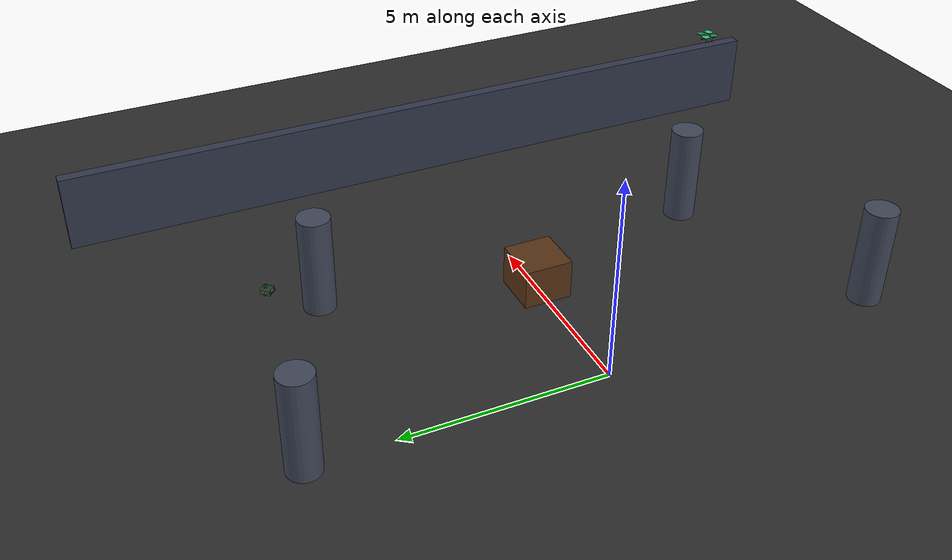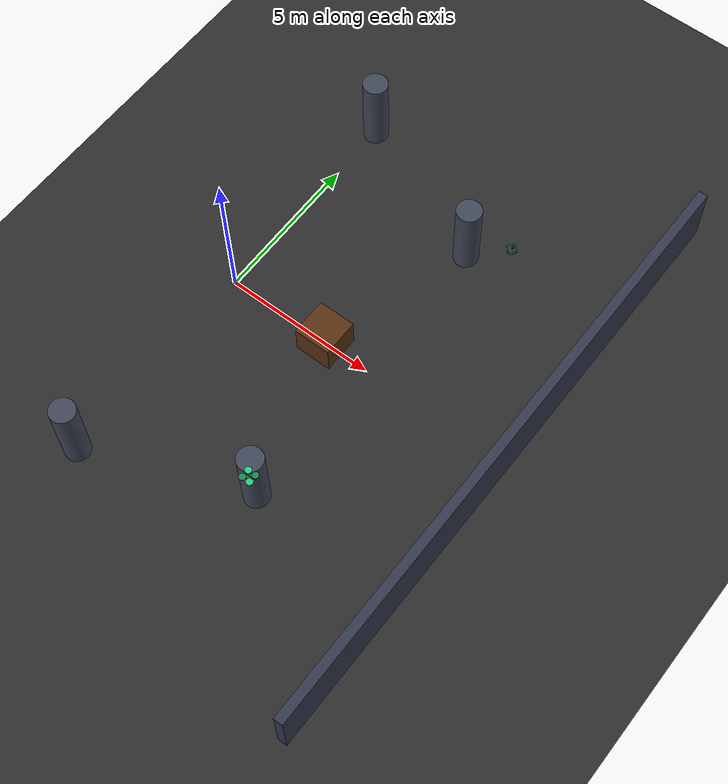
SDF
<sdf version="1.8">
 <world name="c2_arena">
  <model name="ground_plane">
   <static>true</static>
   <link name="link">
    <collision name="collision">
     <geometry><plane><normal>0 0 1</normal><size>100 100</size></plane></geometry>
     <surface><friction><ode><mu>0.8</mu><mu2>0.8</mu2></ode></friction></surface>
    </collision>
    <visual name="visual">
     <geometry><plane><normal>0 0 1</normal><size>100 100</size></plane></geometry>
     <material><ambient>0.18 0.18 0.18 1</ambient><diffuse>0.18 0.18 0.18 1</diffuse></material>
    </visual>
   </link>
  </model>
  <model name="wall_east">
   <static>true</static>
   <pose>10 0 1.0 0 0 0</pose>
   <link name="link">
    <collision name="c"><geometry><box><size>0.3 20.0 2.0</size></box></geometry></collision>
    <visual name="v">
     <geometry><box><size>0.3 20.0 2.0</size></box></geometry>
     <material><ambient>0.20 0.22 0.30 1</ambient><diffuse>0.20 0.22 0.30 1</diffuse></material>
    </visual>
   </link>
  </model>
  <model name="pillar_pp">
   <static>true</static>
   <pose>5 5 1.25 0 0 0</pose>
   <link name="link">
    <collision name="c">
     <geometry><cylinder><radius>0.4</radius><length>2.5</length></cylinder></geometry>
    </collision>
    <visual name="v">
     <geometry><cylinder><radius>0.4</radius><length>2.5</length></cylinder></geometry>
     <material><ambient>0.25 0.28 0.35 1</ambient><diffuse>0.25 0.28 0.35 1</diffuse></material>
    </visual>
   </link>
  </model>
  <model name="pillar_pn">
   <static>true</static>
   <pose>5 -5 1.25 0 0 0</pose>
   <link name="link">
    <collision name="c">
     <geometry><cylinder><radius>0.4</radius><length>2.5</length></cylinder></geometry>
    </collision>
    <visual name="v">
     <geometry><cylinder><radius>0.4</radius><length>2.5</length></cylinder></geometry>
     <material><ambient>0.25 0.28 0.35 1</ambient><diffuse>0.25 0.28 0.35 1</diffuse></material>
    </visual>
   </link>
  </model>
  <model name="pillar_0p">
   <static>true</static>
   <pose>0 7 1.25 0 0 0</pose>
   <link name="link">
    <collision name="c">
     <geometry><cylinder><radius>0.4</radius><length>2.5</length></cylinder></geometry>
    </collision>
    <visual name="v">
     <geometry><cylinder><radius>0.4</radius><length>2.5</length></cylinder></geometry>
     <material><ambient>0.25 0.28 0.35 1</ambient><diffuse>0.25 0.28 0.35 1</diffuse></material>
    </visual>
   </link>
  </model>
  <model name="pillar_0n">
   <static>true</static>
   <pose>0 -7 1.25 0 0 0</pose>
   <link name="link">
    <collision name="c">
     <geometry><cylinder><radius>0.4</radius><length>2.5</length></cylinder></geometry>
    </collision>
    <visual name="v">
     <geometry><cylinder><radius>0.4</radius><length>2.5</length></cylinder></geometry>
     <material><ambient>0.25 0.28 0.35 1</ambient><diffuse>0.25 0.28 0.35 1</diffuse></material>
    </visual>
   </link>
  </model>
  <model name="obs_east">
   <static>true</static>
   <pose>3.5 0 0.5 0 0 0</pose>
   <link name="link">
    <collision name="c"><geometry><box><size>1.2 1.2 1.0</size></box></geometry></collision>
    <visual name="v">
     <geometry><box><size>1.2 1.2 1.0</size></box></geometry>
     <material><ambient>0.35 0.20 0.08 1</ambient><diffuse>0.35 0.20 0.08 1</diffuse></material>
    </visual>
   </link>
  </model>
  <model name="robot2">
   <pose>6 6 0.10 0 0 -2.356194</pose>
   <link name="base_link">
    <inertial>
     <mass>5.0</mass>
     <inertia><ixx>0.10</ixx><ixy>0</ixy><ixz>0</ixz><iyy>0.10</iyy><iyz>0</iyz><izz>0.14</izz></inertia>
    </inertial>
    <collision name="collision">
     <geometry><box><size>0.29 0.265 0.12</size></box></geometry>
     <surface><friction><ode><mu>0.5</mu><mu2>0.5</mu2></ode></friction></surface>
    </collision>
    <visual name="plate_bottom">
     <pose>0 0 -0.057 0 0 0</pose>
     <geometry><box><size>0.290 0.265 0.018</size></box></geometry>
     <material>
      <ambient>0.10 0.20 0.13 1</ambient>
      <diffuse>0.10 0.20 0.13 1</diffuse>
      <specular>0.22 0.40 0.28 1</specular>
     </material>
    </visual>
    <visual name="plate_mid">
     <pose>0 0 -0.005 0 0 0</pose>
     <geometry><box><size>0.290 0.265 0.018</size></box></geometry>
     <material>
      <ambient>0.11 0.22 0.14 1</ambient>
      <diffuse>0.11 0.22 0.14 1</diffuse>
      <specular>0.24 0.44 0.30 1</specular>
     </material>
    </visual>
    <visual name="plate_top">
     <pose>0 0 0.052 0 0 0</pose>
     <geometry><box><size>0.270 0.245 0.014</size></box></geometry>
     <material>
      <ambient>0.12 0.24 0.15 1</ambient>
      <diffuse>0.12 0.24 0.15 1</diffuse>
      <specular>0.25 0.46 0.32 1</specular>
     </material>
    </visual>
    <visual name="col_fl">
     <pose>0.113  0.093 -0.028 0 0 0</pose>
     <geometry><cylinder><radius>0.007</radius><length>0.105</length></cylinder></geometry>
     <material><ambient>0.24 0.38 0.28 1</ambient><diffuse>0.24 0.38 0.28 1</diffuse></material>
    </visual>
    <visual name="col_fr">
     <pose>0.113 -0.093 -0.028 0 0 0</pose>
     <geometry><cylinder><radius>0.007</radius><length>0.105</length></cylinder></geometry>
     <material><ambient>0.24 0.38 0.28 1</ambient><diffuse>0.24 0.38 0.28 1</diffuse></material>
    </visual>
    <visual name="col_bl">
     <pose>-0.113  0.093 -0.028 0 0 0</pose>
     <geometry><cylinder><radius>0.007</radius><length>0.105</length></cylinder></geometry>
     <material><ambient>0.24 0.38 0.28 1</ambient><diffuse>0.24 0.38 0.28 1</diffuse></material>
    </visual>
    <visual name="col_br">
     <pose>-0.113 -0.093 -0.028 0 0 0</pose>
     <geometry><cylinder><radius>0.007</radius><length>0.105</length></cylinder></geometry>
     <material><ambient>0.24 0.38 0.28 1</ambient><diffuse>0.24 0.38 0.28 1</diffuse></material>
    </visual>
    <visual name="lidar_base">
     <pose>-0.040 0 0.068 0 0 0</pose>
     <geometry><cylinder><radius>0.042</radius><length>0.010</length></cylinder></geometry>
     <material><ambient>0.16 0.20 0.18 1</ambient><diffuse>0.16 0.20 0.18 1</diffuse></material>
    </visual>
    <visual name="lidar_body">
     <pose>-0.040 0 0.093 0 0 0</pose>
     <geometry><cylinder><radius>0.038</radius><length>0.040</length></cylinder></geometry>
     <material>
      <ambient>0.08 0.48 0.16 1</ambient>
      <diffuse>0.08 0.48 0.16 1</diffuse>
      <specular>0.50 0.85 0.55 1</specular>
     </material>
    </visual>
    <visual name="lidar_dome">
     <pose>-0.040 0 0.116 0 0 0</pose>
     <geometry><sphere><radius>0.026</radius></sphere></geometry>
     <material>
      <ambient>0.06 0.38 0.12 1</ambient>
      <diffuse>0.06 0.38 0.12 1</diffuse>
      <specular>0.75 1.00 0.80 1</specular>
     </material>
    </visual>
    <visual name="cam_housing">
     <pose>0.146 0 0.012 0 0 0</pose>
     <geometry><box><size>0.030 0.090 0.046</size></box></geometry>
     <material>
      <ambient>0.05 0.06 0.05 1</ambient>
      <diffuse>0.05 0.06 0.05 1</diffuse>
      <specular>0.50 0.50 0.50 1</specular>
     </material>
    </visual>
    <visual name="cam_lens">
     <pose>0.162 0 0.012 0 1.5707963 0</pose>
     <geometry><cylinder><radius>0.014</radius><length>0.008</length></cylinder></geometry>
     <material>
      <ambient>0.02 0.02 0.02 1</ambient>
      <diffuse>0.02 0.02 0.02 1</diffuse>
      <specular>0.95 0.95 0.95 1</specular>
     </material>
    </visual>
    <sensor name="front_camera" type="camera">
     <pose>0.22 0 0.07 0 0 0</pose>
     <camera>
      <horizontal_fov>1.047</horizontal_fov>
      <image><width>480</width><height>360</height><format>R8G8B8</format></image>
      <clip><near>0.05</near><far>50</far></clip>
     </camera>
     <always_on>true</always_on>
     <update_rate>30</update_rate>
     <topic>/robot2/camera/image_raw</topic>
     <visualize>false</visualize>
    </sensor>
   </link>
   <link name="left_wheel">
    <pose>0 0.12 -0.05 -1.5707963 0 0</pose>
    <inertial>
     <mass>0.5</mass>
     <inertia><ixx>0.001</ixx><ixy>0</ixy><ixz>0</ixz><iyy>0.001</iyy><iyz>0</iyz><izz>0.002</izz></inertia>
    </inertial>
    <collision name="c">
     <geometry><cylinder><radius>0.05</radius><length>0.030</length></cylinder></geometry>
     <surface><friction><ode><mu>1.0</mu><mu2>1.0</mu2></ode></friction></surface>
    </collision>
    <visual name="tyre">
     <geometry><cylinder><radius>0.050</radius><length>0.026</length></cylinder></geometry>
     <material><ambient>0.06 0.06 0.06 1</ambient><diffuse>0.06 0.06 0.06 1</diffuse></material>
    </visual>
    <visual name="rim">
     <geometry><cylinder><radius>0.032</radius><length>0.024</length></cylinder></geometry>
     <material>
      <ambient>0.22 0.38 0.26 1</ambient>
      <diffuse>0.22 0.38 0.26 1</diffuse>
      <specular>0.45 0.65 0.50 1</specular>
     </material>
    </visual>
    <visual name="hub">
     <geometry><cylinder><radius>0.012</radius><length>0.026</length></cylinder></geometry>
     <material><ambient>0.35 0.55 0.40 1</ambient><diffuse>0.35 0.55 0.40 1</diffuse></material>
    </visual>
   </link>
   <link name="right_wheel">
    <pose>0 -0.12 -0.05 -1.5707963 0 0</pose>
    <inertial>
     <mass>0.5</mass>
     <inertia><ixx>0.001</ixx><ixy>0</ixy><ixz>0</ixz><iyy>0.001</iyy><iyz>0</iyz><izz>0.002</izz></inertia>
    </inertial>
    <collision name="c">
     <geometry><cylinder><radius>0.05</radius><length>0.030</length></cylinder></geometry>
     <surface><friction><ode><mu>1.0</mu><mu2>1.0</mu2></ode></friction></surface>
    </collision>
    <visual name="tyre">
     <geometry><cylinder><radius>0.050</radius><length>0.026</length></cylinder></geometry>
     <material><ambient>0.06 0.06 0.06 1</ambient><diffuse>0.06 0.06 0.06 1</diffuse></material>
    </visual>
    <visual name="rim">
     <geometry><cylinder><radius>0.032</radius><length>0.024</length></cylinder></geometry>
     <material>
      <ambient>0.22 0.38 0.26 1</ambient>
      <diffuse>0.22 0.38 0.26 1</diffuse>
      <specular>0.45 0.65 0.50 1</specular>
     </material>
    </visual>
    <visual name="hub">
     <geometry><cylinder><radius>0.012</radius><length>0.026</length></cylinder></geometry>
     <material><ambient>0.35 0.55 0.40 1</ambient><diffuse>0.35 0.55 0.40 1</diffuse></material>
    </visual>
   </link>
   <link name="caster_front">
    <pose>0.135 0 -0.095 0 0 0</pose>
    <inertial>
     <mass>0.01</mass>
     <inertia>
      <ixx>0.0000004</ixx>
      <ixy>0</ixy>
      <ixz>0</ixz>
      <iyy>0.0000004</iyy>
      <iyz>0</iyz>
      <izz>0.0000004</izz>
     </inertia>
    </inertial>
    <collision name="c">
     <geometry><sphere><radius>0.005</radius></sphere></geometry>
     <surface><friction><ode><mu>0.0</mu><mu2>0.0</mu2></ode></friction></surface>
    </collision>
    <visual name="v">
     <geometry><sphere><radius>0.005</radius></sphere></geometry>
     <material><ambient>0.35 0.35 0.35 1</ambient></material>
    </visual>
   </link>
   <link name="caster_rear">
    <pose>-0.135 0 -0.095 0 0 0</pose>
    <inertial>
     <mass>0.01</mass>
     <inertia>
      <ixx>0.0000004</ixx>
      <ixy>0</ixy>
      <ixz>0</ixz>
      <iyy>0.0000004</iyy>
      <iyz>0</iyz>
      <izz>0.0000004</izz>
     </inertia>
    </inertial>
    <collision name="c">
     <geometry><sphere><radius>0.005</radius></sphere></geometry>
     <surface><friction><ode><mu>0.0</mu><mu2>0.0</mu2></ode></friction></surface>
    </collision>
    <visual name="v">
     <geometry><sphere><radius>0.005</radius></sphere></geometry>
     <material><ambient>0.35 0.35 0.35 1</ambient></material>
    </visual>
   </link>
   <joint name="left_wheel_joint" type="revolute">
    <parent>base_link</parent>
    <child>left_wheel</child>
    <axis>
     <xyz>0 0 1</xyz>
     <limit><effort>10</effort><velocity>20</velocity></limit>
     <dynamics><damping>0.01</damping></dynamics>
    </axis>
   </joint>
   <joint name="right_wheel_joint" type="revolute">
    <parent>base_link</parent>
    <child>right_wheel</child>
    <axis>
     <xyz>0 0 1</xyz>
     <limit><effort>10</effort><velocity>20</velocity></limit>
     <dynamics><damping>0.01</damping></dynamics>
    </axis>
   </joint>
   <joint name="caster_front_joint" type="fixed"><parent>base_link</parent><child>caster_front</child></joint>
   <joint name="caster_rear_joint" type="fixed"><parent>base_link</parent><child>caster_rear</child></joint>
   <plugin filename="gz-sim-diff-drive-system" name="gz::sim::systems::DiffDrive">
    <left_joint>left_wheel_joint</left_joint>
    <right_joint>right_wheel_joint</right_joint>
    <wheel_separation>0.24</wheel_separation>
    <wheel_radius>0.05</wheel_radius>
    <odom_publish_frequency>10</odom_publish_frequency>
    <topic>/robot2/cmd_vel</topic>
    <odom_topic>/robot2/odom</odom_topic>
    <frame_id>odom</frame_id>
    <child_frame_id>robot2/base_link</child_frame_id>
    <min_velocity>-2</min_velocity>
    <max_velocity>2</max_velocity>
    <min_acceleration>-50</min_acceleration>
    <max_acceleration>50</max_acceleration>
   </plugin>
  </model>
  <model name="drone2">
   <pose>6 -6 4.5 0 0 0</pose>
   <link name="base_link">
    <gravity>false</gravity>
    <inertial>
     <mass>1.5</mass>
     <inertia><ixx>0.04</ixx><ixy>0</ixy><ixz>0</ixz><iyy>0.04</iyy><iyz>0</iyz><izz>0.07</izz></inertia>
    </inertial>
    <collision name="body_col"><geometry><box><size>0.45 0.45 0.10</size></box></geometry></collision>
    <visual name="arm_a">
     <pose>0 0 -0.005 0 0 0.785398</pose>
     <geometry><box><size>0.330 0.036 0.020</size></box></geometry>
     <material>
      <ambient>0.18 0.20 0.18 1</ambient>
      <diffuse>0.18 0.20 0.18 1</diffuse>
      <specular>0.38 0.42 0.38 1</specular>
     </material>
    </visual>
    <visual name="arm_b">
     <pose>0 0 -0.005 0 0 -0.785398</pose>
     <geometry><box><size>0.330 0.036 0.020</size></box></geometry>
     <material>
      <ambient>0.18 0.20 0.18 1</ambient>
      <diffuse>0.18 0.20 0.18 1</diffuse>
      <specular>0.38 0.42 0.38 1</specular>
     </material>
    </visual>
    <visual name="hub_disc">
     <geometry><cylinder><radius>0.075</radius><length>0.040</length></cylinder></geometry>
     <material>
      <ambient>0.16 0.20 0.16 1</ambient>
      <diffuse>0.16 0.20 0.16 1</diffuse>
      <specular>0.45 0.52 0.45 1</specular>
     </material>
    </visual>
    <visual name="hub_ring">
     <pose>0 0 0.022 0 0 0</pose>
     <geometry><cylinder><radius>0.068</radius><length>0.005</length></cylinder></geometry>
     <material>
      <ambient>0.15 0.80 0.50 1</ambient>
      <diffuse>0.15 0.80 0.50 1</diffuse>
      <specular>0.30 0.90 0.60 1</specular>
     </material>
    </visual>
    <visual name="battery">
     <pose>0 0 0.038 0 0 0</pose>
     <geometry><box><size>0.140 0.044 0.030</size></box></geometry>
     <material><ambient>0.10 0.14 0.10 1</ambient><diffuse>0.10 0.14 0.10 1</diffuse></material>
    </visual>
    <visual name="motor_fr">
     <pose>0.117 -0.117 0.014 0 0 0</pose>
     <geometry><cylinder><radius>0.024</radius><length>0.034</length></cylinder></geometry>
     <material>
      <ambient>0.12 0.16 0.12 1</ambient>
      <diffuse>0.12 0.16 0.12 1</diffuse>
      <specular>0.55 0.65 0.55 1</specular>
     </material>
    </visual>
    <visual name="motor_fl">
     <pose>0.117  0.117 0.014 0 0 0</pose>
     <geometry><cylinder><radius>0.024</radius><length>0.034</length></cylinder></geometry>
     <material>
      <ambient>0.12 0.16 0.12 1</ambient>
      <diffuse>0.12 0.16 0.12 1</diffuse>
      <specular>0.55 0.65 0.55 1</specular>
     </material>
    </visual>
    <visual name="motor_br">
     <pose>-0.117 -0.117 0.014 0 0 0</pose>
     <geometry><cylinder><radius>0.024</radius><length>0.034</length></cylinder></geometry>
     <material>
      <ambient>0.12 0.16 0.12 1</ambient>
      <diffuse>0.12 0.16 0.12 1</diffuse>
      <specular>0.55 0.65 0.55 1</specular>
     </material>
    </visual>
    <visual name="motor_bl">
     <pose>-0.117  0.117 0.014 0 0 0</pose>
     <geometry><cylinder><radius>0.024</radius><length>0.034</length></cylinder></geometry>
     <material>
      <ambient>0.12 0.16 0.12 1</ambient>
      <diffuse>0.12 0.16 0.12 1</diffuse>
      <specular>0.55 0.65 0.55 1</specular>
     </material>
    </visual>
    <visual name="prop_fr">
     <pose>0.117 -0.117 0.038 0 0 0</pose>
     <geometry><cylinder><radius>0.100</radius><length>0.006</length></cylinder></geometry>
     <material>
      <ambient>0.15 0.80 0.50 1</ambient>
      <diffuse>0.15 0.80 0.50 1</diffuse>
      <specular>0.25 0.90 0.60 1</specular>
     </material>
    </visual>
    <visual name="prop_bl">
     <pose>-0.117  0.117 0.038 0 0 0</pose>
     <geometry><cylinder><radius>0.100</radius><length>0.006</length></cylinder></geometry>
     <material>
      <ambient>0.15 0.80 0.50 1</ambient>
      <diffuse>0.15 0.80 0.50 1</diffuse>
      <specular>0.25 0.90 0.60 1</specular>
     </material>
    </visual>
    <visual name="prop_fl">
     <pose>0.117  0.117 0.038 0 0 0</pose>
     <geometry><cylinder><radius>0.100</radius><length>0.006</length></cylinder></geometry>
     <material>
      <ambient>0.10 0.52 0.32 1</ambient>
      <diffuse>0.10 0.52 0.32 1</diffuse>
      <specular>0.18 0.60 0.40 1</specular>
     </material>
    </visual>
    <visual name="prop_br">
     <pose>-0.117 -0.117 0.038 0 0 0</pose>
     <geometry><cylinder><radius>0.100</radius><length>0.006</length></cylinder></geometry>
     <material>
      <ambient>0.10 0.52 0.32 1</ambient>
      <diffuse>0.10 0.52 0.32 1</diffuse>
      <specular>0.18 0.60 0.40 1</specular>
     </material>
    </visual>
    <visual name="gimbal_arm">
     <pose>0.110 0 -0.046 0 0 0</pose>
     <geometry><cylinder><radius>0.006</radius><length>0.072</length></cylinder></geometry>
     <material><ambient>0.18 0.22 0.18 1</ambient><diffuse>0.18 0.22 0.18 1</diffuse></material>
    </visual>
    <visual name="cam_body">
     <pose>0.140 0 -0.072 0 0 0</pose>
     <geometry><box><size>0.038 0.040 0.036</size></box></geometry>
     <material>
      <ambient>0.05 0.07 0.05 1</ambient>
      <diffuse>0.05 0.07 0.05 1</diffuse>
      <specular>0.55 0.60 0.55 1</specular>
     </material>
    </visual>
    <visual name="cam_lens">
     <pose>0.160 0 -0.072 0 1.5707963 0</pose>
     <geometry><cylinder><radius>0.013</radius><length>0.010</length></cylinder></geometry>
     <material>
      <ambient>0.02 0.02 0.02 1</ambient>
      <diffuse>0.02 0.02 0.02 1</diffuse>
      <specular>0.95 0.95 0.95 1</specular>
     </material>
    </visual>
    <visual name="leg_fr">
     <pose>0.100 -0.100 -0.076 0 0 0</pose>
     <geometry><cylinder><radius>0.005</radius><length>0.100</length></cylinder></geometry>
     <material><ambient>0.20 0.25 0.20 1</ambient><diffuse>0.20 0.25 0.20 1</diffuse></material>
    </visual>
    <visual name="leg_fl">
     <pose>0.100  0.100 -0.076 0 0 0</pose>
     <geometry><cylinder><radius>0.005</radius><length>0.100</length></cylinder></geometry>
     <material><ambient>0.20 0.25 0.20 1</ambient><diffuse>0.20 0.25 0.20 1</diffuse></material>
    </visual>
    <visual name="leg_br">
     <pose>-0.100 -0.100 -0.076 0 0 0</pose>
     <geometry><cylinder><radius>0.005</radius><length>0.100</length></cylinder></geometry>
     <material><ambient>0.20 0.25 0.20 1</ambient><diffuse>0.20 0.25 0.20 1</diffuse></material>
    </visual>
    <visual name="leg_bl">
     <pose>-0.100  0.100 -0.076 0 0 0</pose>
     <geometry><cylinder><radius>0.005</radius><length>0.100</length></cylinder></geometry>
     <material><ambient>0.20 0.25 0.20 1</ambient><diffuse>0.20 0.25 0.20 1</diffuse></material>
    </visual>
    <visual name="skid_front">
     <pose>0.100 0 -0.124 0 0 0</pose>
     <geometry><box><size>0.010 0.230 0.008</size></box></geometry>
     <material><ambient>0.20 0.25 0.20 1</ambient><diffuse>0.20 0.25 0.20 1</diffuse></material>
    </visual>
    <visual name="skid_rear">
     <pose>-0.100 0 -0.124 0 0 0</pose>
     <geometry><box><size>0.010 0.230 0.008</size></box></geometry>
     <material><ambient>0.20 0.25 0.20 1</ambient><diffuse>0.20 0.25 0.20 1</diffuse></material>
    </visual>
    <sensor name="front_camera" type="camera">
     <pose>0.25 0 0.0 0 0.2 0</pose>
     <camera>
      <horizontal_fov>0.9</horizontal_fov>
      <image><width>640</width><height>480</height><format>R8G8B8</format></image>
      <clip><near>0.1</near><far>80</far></clip>
     </camera>
     <always_on>true</always_on>
     <update_rate>30</update_rate>
     <topic>/drone2/camera/image_raw</topic>
     <visualize>false</visualize>
    </sensor>
   </link>
   <plugin filename="gz-sim-velocity-control-system" name="gz::sim::systems::VelocityControl">
    <topic>/drone2/cmd_vel</topic>
    <initial_linear>0 0 0</initial_linear>
    <initial_angular>0 0 0</initial_angular>
   </plugin>
   <plugin filename="gz-sim-odometry-publisher-system" name="gz::sim::systems::OdometryPublisher">
    <odom_topic>/drone2/odom</odom_topic>
    <robot_base_frame>drone2/base_link</robot_base_frame>
    <odom_publish_frequency>10</odom_publish_frequency>
    <dimensions>3</dimensions>
   </plugin>
  </model>
 </world>
</sdf>
